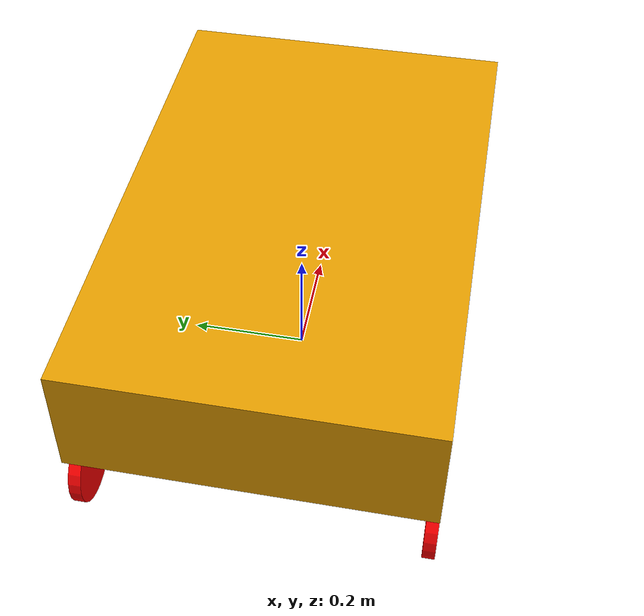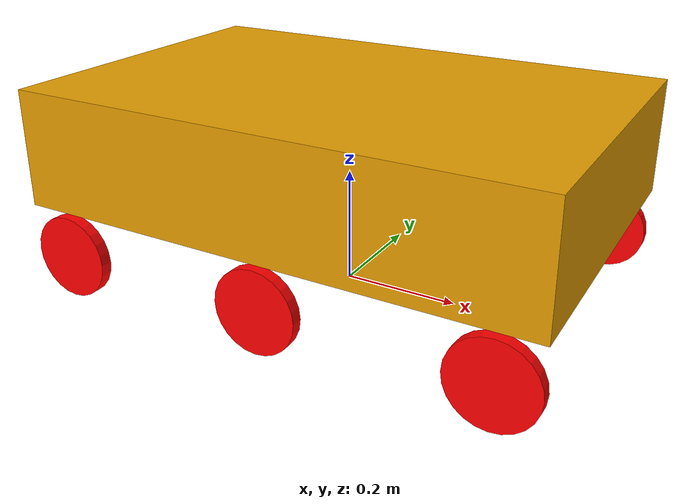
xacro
<?xml version="1.0" ?>
<!-- |    This document was autogenerated by xacro from mobile_base.urdf.xacro         | -->
<!-- |    EDITING THIS FILE BY HAND IS NOT RECOMMENDED                                 | -->
<robot name="fake_MiR200" xmlns:xacro="http://ros.org/wiki/xacro">
  <!-- Chassis link -->
  <link name="chassis">
    <visual name="visual">
      <geometry>
        <box size="0.89 0.58 0.2"/>
      </geometry>
    </visual>
    <collision name="collision">
      <geometry>
        <box size="0.89 0.58 0.2"/>
      </geometry>
    </collision>
    <inertial>
      <mass value="63.65"/>
      <inertia ixx="1.99648833333" ixy="0.0" ixz="0.0" iyy="4.41359708333" iyz="0.0" izz="5.98575208333"/>
    </inertial>
  </link>
  <link name="wheel_1_link">
    <visual>
      <geometry>
        <cylinder length="0.02" radius="0.071"/>
      </geometry>
      <material name="red">
        <color rgba="1 0 0 1"/>
      </material>
    </visual>
    <collision>
      <geometry>
        <cylinder length="0.02" radius="0.071"/>
      </geometry>
    </collision>
    <inertial>
      <mass value="0.558333333333"/>
      <inertia ixx="0.000722250694444" ixy="0.0" ixz="0.0" iyy="0.000722250694444" iyz="0.0" izz="0.00140727916667"/>
    </inertial>
  </link>
  <joint name="wheel_1_joint" type="fixed">
    <axis xyz="0 0 1"/>
    <parent link="chassis"/>
    <child link="wheel_1_link"/>
    <origin rpy="-1.57079632679 0 0" xyz="0.374 0.28 -0.181"/>
  </joint>
  <link name="wheel_2_link">
    <visual>
      <geometry>
        <cylinder length="0.02" radius="0.071"/>
      </geometry>
      <material name="red">
        <color rgba="1 0 0 1"/>
      </material>
    </visual>
    <collision>
      <geometry>
        <cylinder length="0.02" radius="0.071"/>
      </geometry>
    </collision>
    <inertial>
      <mass value="0.558333333333"/>
      <inertia ixx="0.000722250694444" ixy="0.0" ixz="0.0" iyy="0.000722250694444" iyz="0.0" izz="0.00140727916667"/>
    </inertial>
  </link>
  <joint name="wheel_2_joint" type="fixed">
    <axis xyz="0 0 1"/>
    <parent link="chassis"/>
    <child link="wheel_2_link"/>
    <origin rpy="-1.57079632679 0 0" xyz="0 0.28 -0.181"/>
  </joint>
  <link name="wheel_3_link">
    <visual>
      <geometry>
        <cylinder length="0.02" radius="0.071"/>
      </geometry>
      <material name="red">
        <color rgba="1 0 0 1"/>
      </material>
    </visual>
    <collision>
      <geometry>
        <cylinder length="0.02" radius="0.071"/>
      </geometry>
    </collision>
    <inertial>
      <mass value="0.558333333333"/>
      <inertia ixx="0.000722250694444" ixy="0.0" ixz="0.0" iyy="0.000722250694444" iyz="0.0" izz="0.00140727916667"/>
    </inertial>
  </link>
  <joint name="wheel_3_joint" type="fixed">
    <axis xyz="0 0 1"/>
    <parent link="chassis"/>
    <child link="wheel_3_link"/>
    <origin rpy="-1.57079632679 0 0" xyz="-0.374 0.28 -0.181"/>
  </joint>
  <link name="wheel_4_link">
    <visual>
      <geometry>
        <cylinder length="0.02" radius="0.071"/>
      </geometry>
      <material name="red">
        <color rgba="1 0 0 1"/>
      </material>
    </visual>
    <collision>
      <geometry>
        <cylinder length="0.02" radius="0.071"/>
      </geometry>
    </collision>
    <inertial>
      <mass value="0.558333333333"/>
      <inertia ixx="0.000722250694444" ixy="0.0" ixz="0.0" iyy="0.000722250694444" iyz="0.0" izz="0.00140727916667"/>
    </inertial>
  </link>
  <joint name="wheel_4_joint" type="fixed">
    <axis xyz="0 0 1"/>
    <parent link="chassis"/>
    <child link="wheel_4_link"/>
    <origin rpy="-1.57079632679 0 0" xyz="-0.374 -0.28 -0.181"/>
  </joint>
  <link name="wheel_5_link">
    <visual>
      <geometry>
        <cylinder length="0.02" radius="0.071"/>
      </geometry>
      <material name="red">
        <color rgba="1 0 0 1"/>
      </material>
    </visual>
    <collision>
      <geometry>
        <cylinder length="0.02" radius="0.071"/>
      </geometry>
    </collision>
    <inertial>
      <mass value="0.558333333333"/>
      <inertia ixx="0.000722250694444" ixy="0.0" ixz="0.0" iyy="0.000722250694444" iyz="0.0" izz="0.00140727916667"/>
    </inertial>
  </link>
  <joint name="wheel_5_joint" type="fixed">
    <axis xyz="0 0 1"/>
    <parent link="chassis"/>
    <child link="wheel_5_link"/>
    <origin rpy="-1.57079632679 0 0" xyz="0 -0.28 -0.181"/>
  </joint>
  <link name="wheel_6_link">
    <visual>
      <geometry>
        <cylinder length="0.02" radius="0.071"/>
      </geometry>
      <material name="red">
        <color rgba="1 0 0 1"/>
      </material>
    </visual>
    <collision>
      <geometry>
        <cylinder length="0.02" radius="0.071"/>
      </geometry>
    </collision>
    <inertial>
      <mass value="0.558333333333"/>
      <inertia ixx="0.000722250694444" ixy="0.0" ixz="0.0" iyy="0.000722250694444" iyz="0.0" izz="0.00140727916667"/>
    </inertial>
  </link>
  <joint name="wheel_6_joint" type="fixed">
    <axis xyz="0 0 1"/>
    <parent link="chassis"/>
    <child link="wheel_6_link"/>
    <origin rpy="-1.57079632679 0 0" xyz="0.374 -0.28 -0.181"/>
  </joint>
  <link name="world"/>
  <joint name="prismatic_chassis_to_world" type="prismatic">
    <origin rpy="0 0 0" xyz="0 0 0.252"/>
    <parent link="world"/>
    <child link="chassis"/>
    <axis xyz="1 0 0"/>
    <limit effort="1000.0" lower="-100" upper="100" velocity="2"/>
  </joint>
  <transmission name="prismatic_chassis_to_world_trans">
    <type>transmission_interface/SimpleTransmission</type>
    <joint name="prismatic_chassis_to_world">
      <hardwareInterface>hardware_interface/EffortJointInterface</hardwareInterface>
    </joint>
    <actuator name="prismatic_chassis_to_world_motor">
      <hardwareInterface>hardware_interface/EffortJointInterface</hardwareInterface>
      <mechanicalReduction>1</mechanicalReduction>
    </actuator>
  </transmission>
</robot>
